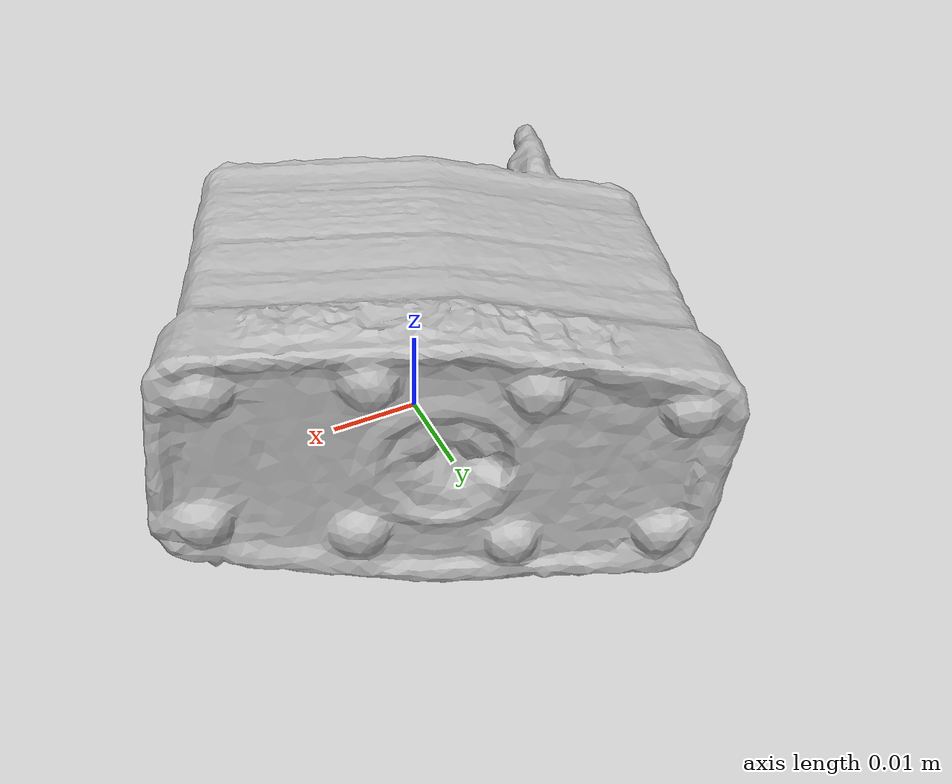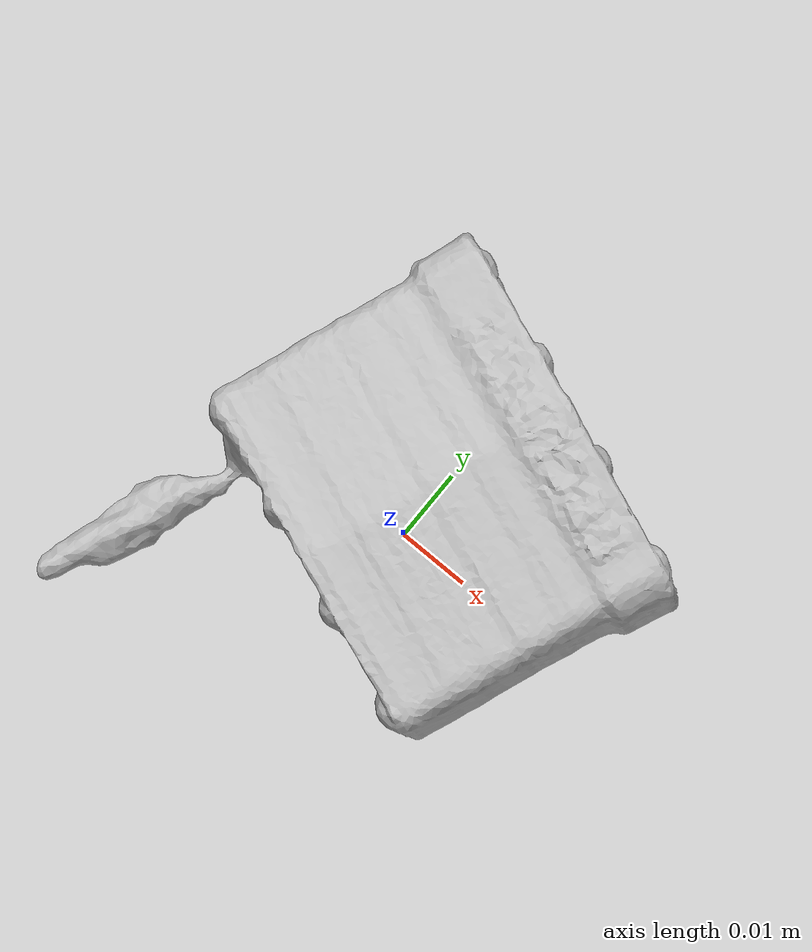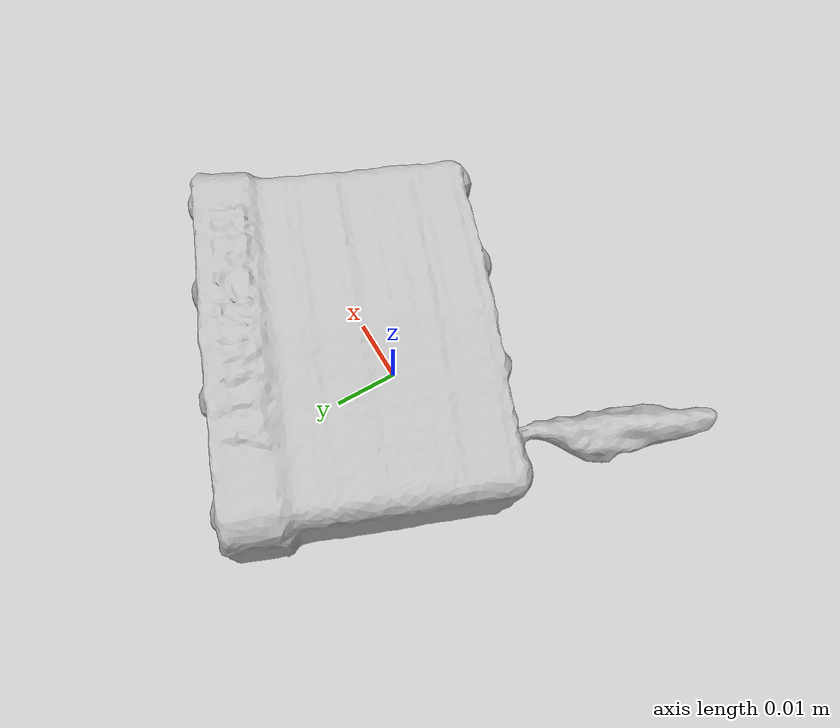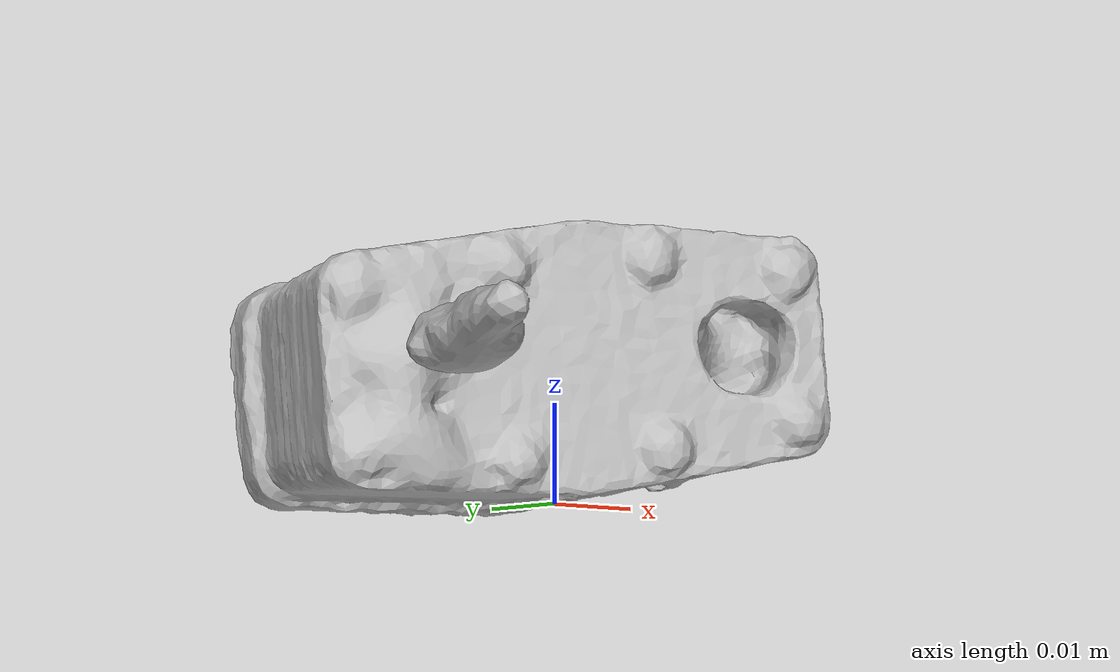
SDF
<?xml version="1.0" ?>
<sdf version='1.8'>
  <model name='ycb_038_padlock'>
    <link name='body'>
      <inertial>
        <mass>0.208</mass>
        <pose>0.000807933002 0.00653438898 0.0138273416 0 0 0</pose>
        <inertia>
          <ixx>3.91697613202e-05</ixx>
          <ixy>2.65760748168e-06</ixy>
          <ixz>-3.33389917025e-06</ixz>
          <iyy>5.14630958356e-05</iyy>
          <iyz>2.54560188935e-07</iyz>
          <izz>7.01200706644e-05</izz>
        </inertia>
      </inertial>
      <visual name='ycb_038_padlock_visual'>
        <pose>0.017884 -0.002983 0.000201 0 0 0</pose>
        <geometry>
          <mesh>
            <uri>model://ycb_038_padlock/meshes/textured.dae</uri>
          </mesh>
        </geometry>
      </visual>
      <collision name='ycb_038_padlock_collision'>
        <pose>0.017884 -0.002983 0.000201 0 0 0</pose>
        <geometry>
          <mesh>
            <uri>model://ycb_038_padlock/meshes/nontextured.stl</uri>
          </mesh>
        </geometry>
        <max_contacts>10</max_contacts>
        <surface>
          <contact>
            <ode>
              <kp>1e15</kp>
              <kd>1e13</kd>
            </ode>
          </contact>
        </surface>
      </collision>
    </link>
  </model>
</sdf>
